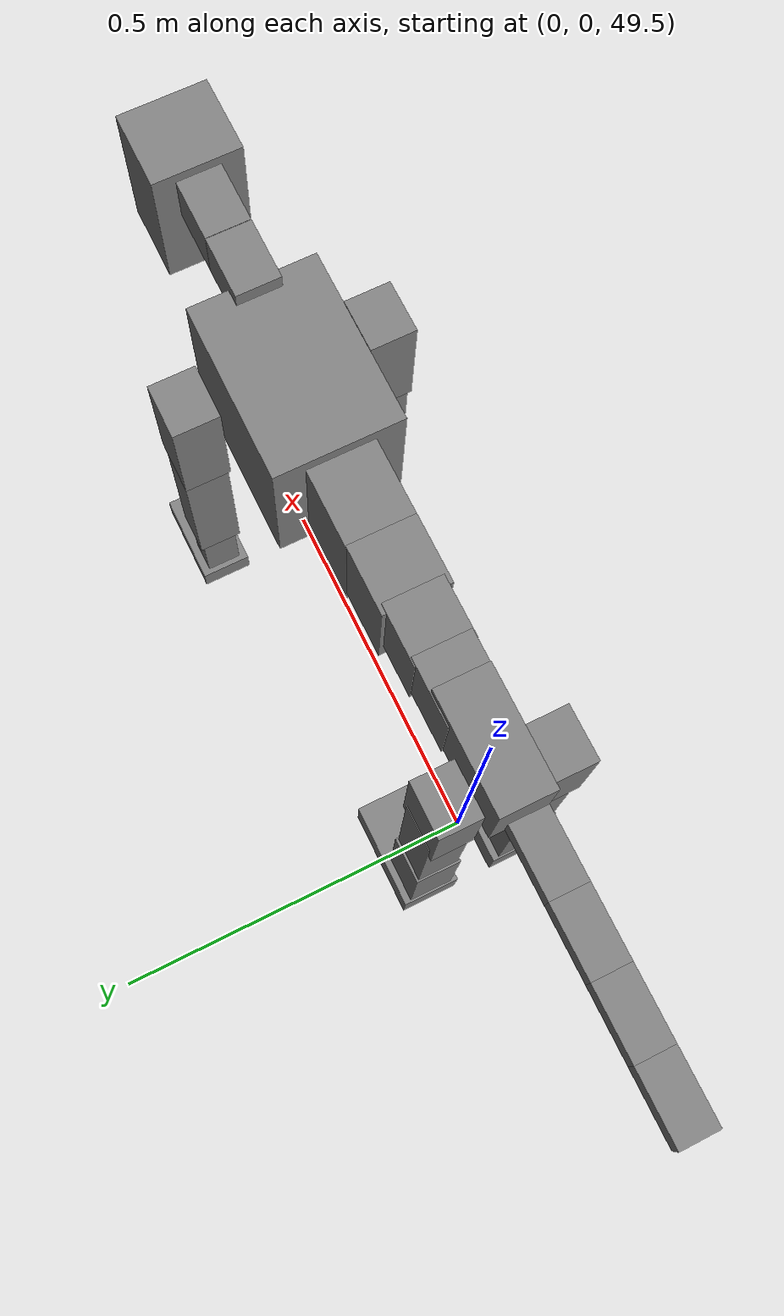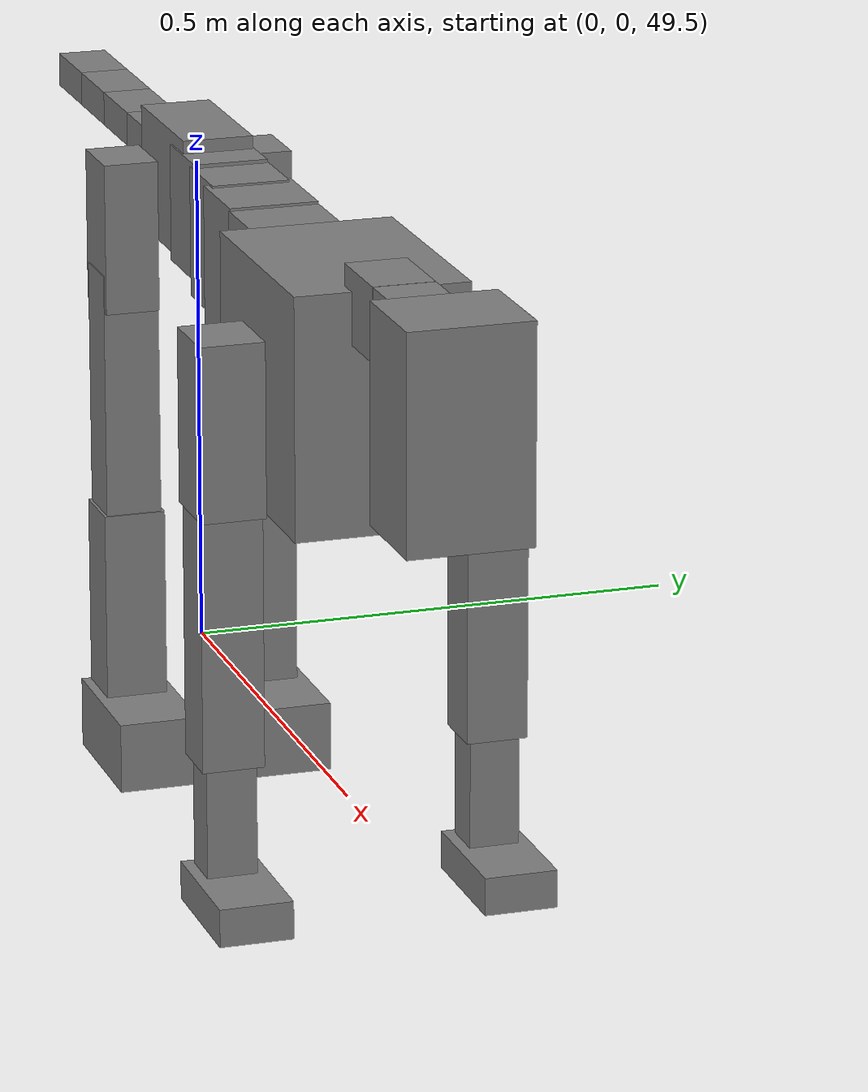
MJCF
<mujoco model="dog">

    <default>
        <joint armature="0.02" stiffness="1" damping="0.2" limited="true"/>
        <geom condim="3" friction="1 0.05 0.05" margin="0.01"/>
        <motor ctrllimited="true" ctrlrange="-1.0 1.0" forcelimited="true" gear="50"/>
    </default>

    <compiler inertiafromgeom="true" angle="radian"/>

    <option timestep="0.016" iterations="50" tolerance="1e-10" solver="Newton" jacobian="dense" cone="pyramidal"/>

    <size nconmax="20000" njmax="60000" nstack="5000000"/>
    <visual>
        <map force="0.1" zfar="30"/>
        <rgba haze="0.15 0.25 0.35 1"/>
        <quality shadowsize="2048"/>
        <global offwidth="800" offheight="800"/>
    </visual>

    <asset>
        <texture type="skybox" builtin="gradient" rgb1="0.3 0.5 0.7" rgb2="0 0 0" width="512" height="512"/>
        <texture name="texplane" type="2d" builtin="checker" rgb1=".2 .3 .4" rgb2=".1 0.15 0.2" width="512" height="512"
                 mark="cross" markrgb=".8 .8 .8"/>
        <texture name="texgeom" type="cube" builtin="flat" mark="cross" width="127" height="1278" rgb1="0.8 0.6 0.4"
                 rgb2="0.8 0.6 0.4" markrgb="1 1 1" random="0.01"/>

        <material name="matplane" reflectance="0.3" texture="texplane" texrepeat="1 1" texuniform="true"/>
        <material name="matgeom" texture="texgeom" texuniform="true" rgba="0.8 0.6 .4 1"/>
    </asset>

    <worldbody>
        <geom name="floor" pos="0 0 0" size="0 0 .25" type="plane" material="matplane" condim="3"/>

        <light directional="false" diffuse=".2 .2 .2" specular="0 0 0" pos="0 0 5" dir="0 0 -1" castshadow="false"/>
        <light mode="targetbodycom" target="torso" directional="false" diffuse=".8 .8 .8" specular="0.3 0.3 0.3"
               pos="0 0 4.0" dir="0 0 -1"/>

        <body name="root" pos="0 0 50">
            <freejoint name="root_1"/>
            <geom type="box" pos="0 0 -0.02" size="0.0774  0.0358  0.063" density="2030"/>

            <body name="spine1" pos="0.054 0 0">
                <joint name="spine1_y" axis="0 1 0" range="0 0.7" limited="true"/>
                <geom type="box" pos="0.02375 0 -0.03" size="0.04375  0.0375  0.05985" density="2030"/>

                <body name="spine2" pos="0.0612 0 0">
                    <joint name="spine2_y" axis="0 1 0" range="-0.15 0.15" limited="true"/>
                    <geom type="box" pos="0.03555  0  -0.04" size="0.04055  0.039  0.06615" density="2030"/>

                    <body name="spine3" pos="0.0730 0 0">
                        <joint name="spine3_y" axis="0 1 0" range="-0.15 0.15" limited="true"/>
                        <geom type="box" pos="0.03555  0  -0.057" size="0.04555  0.0445  0.081" density="2030"/>

                        <body name="spine4" pos="0.0780 0 0">
                            <joint name="spine4_y" axis="0 1 0" range="-0.15 0.15" limited="true"/>
                            <geom type="box" pos="0.05265  0  -0.07" size="0.05265  0.045  0.09135" density="2030"/>

                            <body name="torso" pos="0.1082 0 0">
                                <joint name="torso_y" axis="0 1 0" range="-0.15 0.15" limited="true"/>
                                <geom type="box" pos="0.11925  0  -0.085" size="0.11925  0.085  0.11745"
                                      density="2030"/>

                                <body name="neck1" pos="0.2160  0   0.0180">
                                    <joint name="neck1_y" axis="0 1 0" range="-1.2  -1" limited="true"/>
                                    <geom type="box" pos="0.0423  0  0" size="0.0423  0.03  0.036" density="2325"/>

                                    <body name="neck2" pos="0.0853  0  0">
                                        <joint name="neck2_y" axis="0 1 0" range="0.1  0" limited="true"/>
                                        <geom type="box" pos="0.0423  0  0" size="0.0423  0.03  0.036" density="2325"/>

                                        <body name="head" pos="0.0853  0  0">
                                            <joint name="head_y" axis="0 1 0" range="-0.3  -0.2" limited="true"/>
                                            <geom type="box" pos="0.0531  0  -0.055" size="0.0531  0.06  0.1044"
                                                  density="4030"/>

                                        </body>
                                    </body>
                                </body>

                                <body name="front_shoulder" pos="0.156  0   -0.0480">
                                    <joint name="front_shoulder_y" axis="0 1 0" range="-1 1.5" limited="true"/>
                                    <geom type="box" pos="0 0.13 -0.0583" size="0.0368  0.0314  0.0849" density="1158"/>
                                    <geom type="box" pos="0 -0.13 -0.0583" size="0.0368  0.0314  0.0849"
                                          density="1158"/>

                                    <body name="front_elbow" pos="0  0  -0.1166">
                                        <joint name="front_elbow_y" axis="0 1 0" range="-2 0" limited="true"/>
                                        <geom type="box" pos="0 0.13 -0.1366" size="0.0294  0.0301  0.1366"
                                              density="1081"/>
                                        <geom type="box" pos="0 -0.13 -0.1366" size="0.0294  0.0301  0.1366"
                                              density="1081"/>

                                        <body name="front_wrist" pos="0  0  -0.2732">
                                            <joint name="front_wrist_y" axis="0 1 0" range="-0.2 0" limited="true"/>
                                            <geom type="box" pos="0 0.13 -0.0617" size="0.0222  0.0246  0.0748"
                                                  density="1664"/>
                                            <geom type="box" pos="0 -0.13 -0.0617" size="0.0222  0.0246  0.0748"
                                                  density="1664"/>

                                            <body name="front_finger_end" pos="0  0  -0.1234">
                                                <joint name="front_finger_y" axis="0 1 0" range="-0.4 1"
                                                       limited="true"/>
                                                <geom type="box" pos="0.0359  0.13  -0.0038"
                                                      size="0.0659  0.0359  0.0188" density="1515"/>
                                                <geom type="box" pos="0.0359  -0.13  -0.0038"
                                                      size="0.0659  0.0359  0.0188" density="1515"/>

                                            </body>

                                        </body>
                                    </body>
                                </body>

                            </body>
                        </body>
                    </body>
                </body>
            </body>

            <body name="back_hip" pos="-0.03 0 -0.018">
                <joint name="back_hip_y" axis="0 1 0" range="-1.5 0.3" limited="true"/>
                <geom type="box" pos="0 0.07 -0.0546" size="0.0353  0.0277  0.0774" density="1154"/>
                <geom type="box" pos="0 -0.07 -0.0546" size="0.0353  0.0277  0.0774" density="1154"/>

                <body name="back_knee" pos="0  0  -0.1091">
                    <joint name="back_knee_y" axis="0 1 0" range="0 2.8" limited="true"/>
                    <geom type="box" pos="0 0.07 -0.1241" size="0.0290  0.0285  0.1397" density="1227"/>
                    <geom type="box" pos="0 -0.07 -0.1241" size="0.0290  0.0285  0.1397" density="1227"/>

                    <body name="back_ankle" pos="0  0  -0.2482">
                        <joint name="back_ankle_y" axis="0 1 0" range="-2.2 0" limited="true"/>
                        <geom type="box" pos="0 0.07 -0.0994" size="0.0316  0.0316  0.1106" density="1284"/>
                        <geom type="box" pos="0 -0.07 -0.0994" size="0.0316  0.0316  0.1106" density="1284"/>

                        <body name="back_toe_end" pos="0  0  -0.1987">
                            <joint name="back_toe_y" axis="0 1 0" range="-0.4 1" limited="true"/>
                            <geom type="box" pos="0.0412  0.07  -0.0210" size="0.0755  0.0412  0.0360" density="1515"/>
                            <geom type="box" pos="0.0412  -0.07  -0.0210" size="0.0755  0.0412  0.0360" density="1515"/>

                        </body>
                    </body>
                </body>
            </body>

            <body name="tail1" pos="-0.074 0 -0.006">
                <joint name="tail1_y" axis="0 1 0" range="-0.2 0.2" limited="true"/>
                <geom type="box" pos="-0.0536  0  0" size="0.045  0.025  0.0175" density="1587"/>

                <body name="tail2" pos="-0.09 0 0">
                    <joint name="tail2_y" axis="0 1 0" range="-0.2 0.2" limited="true"/>
                    <geom type="box" pos="-0.0536  0  0" size="0.045  0.025  0.0175" density="1587"/>

                    <body name="tail3" pos="-0.09 0 0">
                        <joint name="tail3_y" axis="0 1 0" range="-0.2 0.2" limited="true"/>
                        <geom type="box" pos="-0.0536  0  0" size="0.045  0.025  0.0175" density="1587"/>

                        <body name="tail4" pos="-0.09 0 0">
                            <joint name="tail4_y" axis="0 1 0" range="-0.2 0.2" limited="true"/>
                            <geom type="box" pos="-0.0536  0  0" size="0.045  0.025  0.0175" density="1587"/>

                        </body>
                    </body>
                </body>
            </body>
        </body>
    </worldbody>

    <actuator>
        <motor joint="spine1_y" forcerange="-150 150     "/>
        <motor joint="spine2_y" forcerange="-150 150     "/>
        <motor joint="spine3_y" forcerange="-150 150     "/>
        <motor joint="spine4_y" forcerange="-150 150     "/>
        <motor joint="torso_y" forcerange="-150 150     "/>
        <motor joint="neck1_y" forcerange="-100 100       "/>
        <motor joint="neck2_y" forcerange="-100 100       "/>
        <motor joint="head_y" forcerange="-150 150       "/>
        <motor joint="front_shoulder_y" forcerange="-169.14 140.51"/>
        <motor joint="front_elbow_y" forcerange="-196.71 122.02"/>
        <motor joint="front_wrist_y" forcerange="-109.78 87.13"/>
        <motor joint="front_finger_y" forcerange="-55.95 95.68"/>
        <motor joint="back_hip_y" forcerange="-358.98 210.68"/>
        <motor joint="back_knee_y" forcerange="-288.42 326.77"/>
        <motor joint="back_angle_y" forcerange="-223.34 181.49"/>
        <motor joint="back_toe_y" forcerange="-138.42 110.90"/>
        <motor joint="tail1_y" forcerange="-50 50     "/>
        <motor joint="tail2_y" forcerange="-50 50     "/>
        <motor joint="tail3_y" forcerange="-50 50     "/>
        <motor joint="tail4_y" forcerange="-50 50     "/>
    </actuator>
</mujoco>
